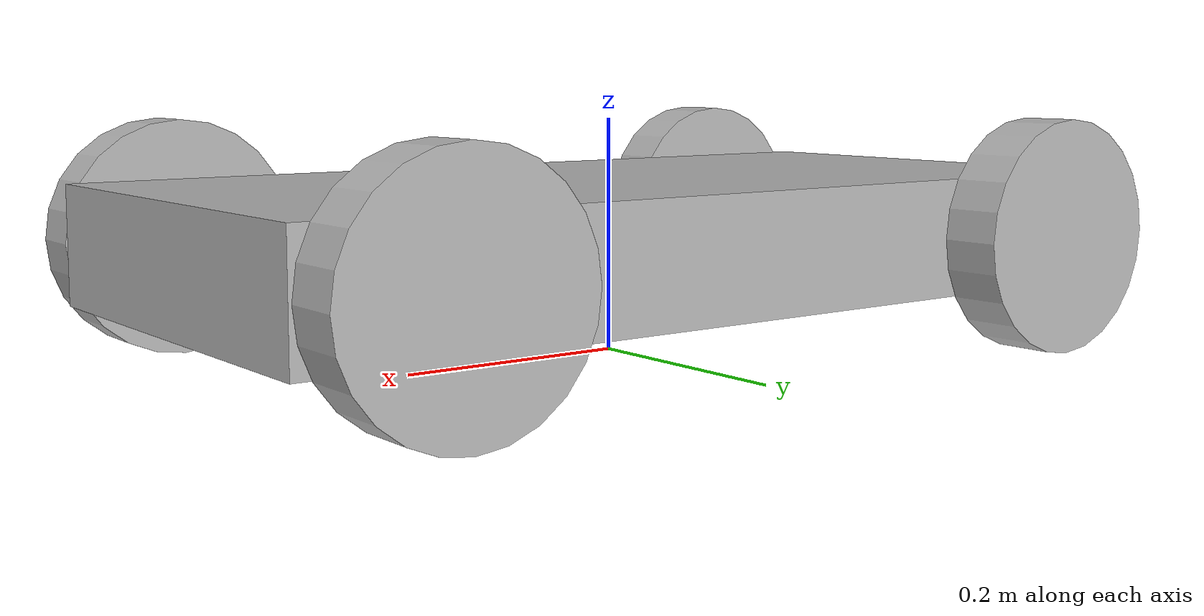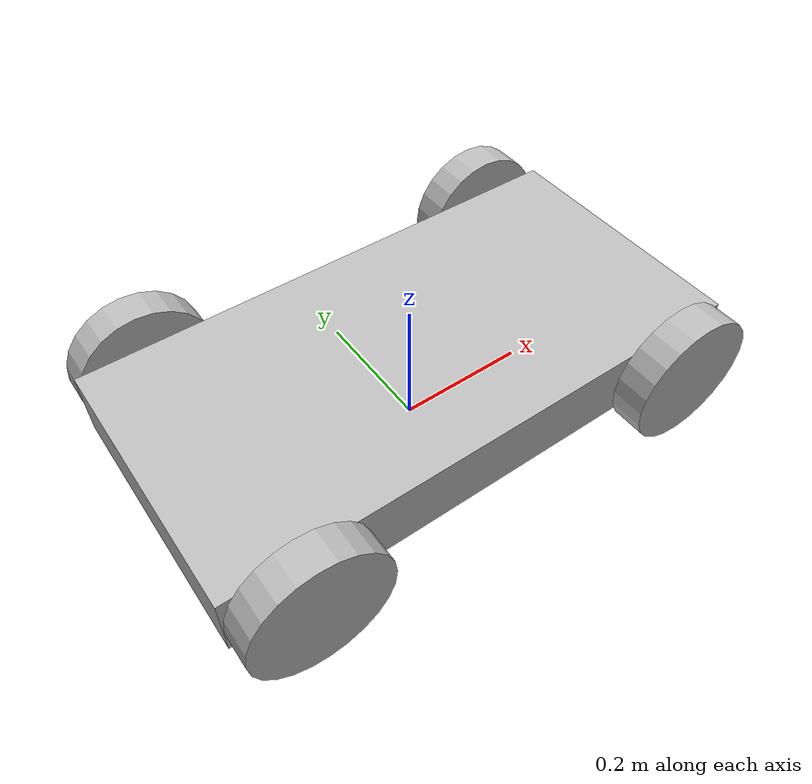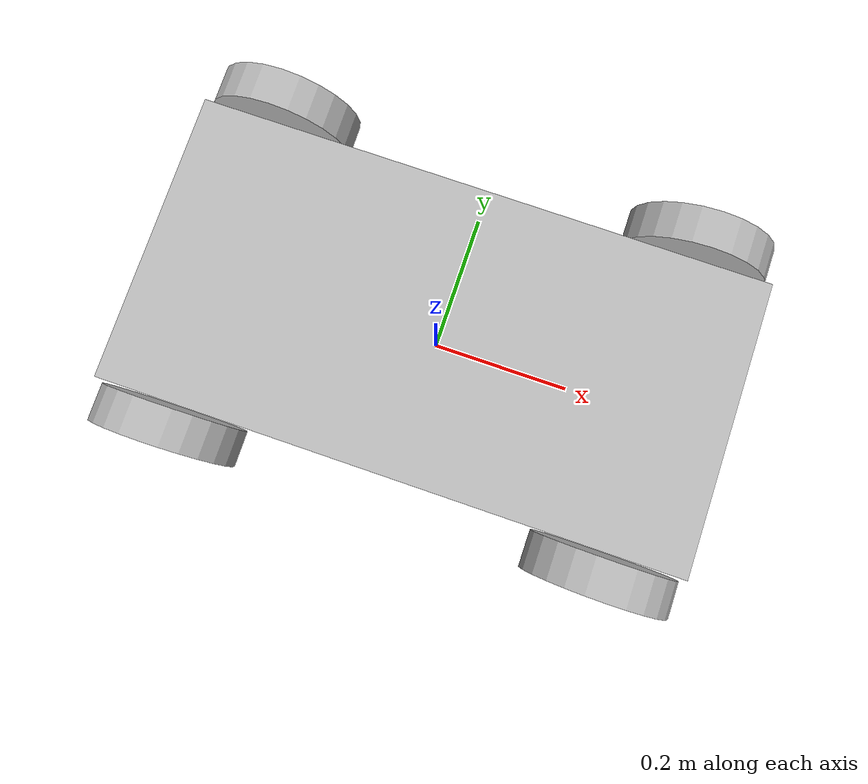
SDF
<?xml version='1.0'?>
<sdf version='1.4'>
  <model name="body_lifter">
    <static>false</static>

    <link name='chassis'>
      <pose>0 0 .1 0 0 0</pose>

      <collision name='collision'>
        <geometry>
          <box>
            <size>.8 .4 .1</size>
          </box>
        </geometry>
      </collision>

      <visual name='visual'>
        <geometry>
          <box>
            <size>.8 .4 .1</size>
          </box>
        </geometry>
      </visual>

   </link>

    <link name="left_wheel_A">
      <pose>0.3 0.23 0.1 0 1.5707 1.5707</pose>
      <collision name="collision">
        <geometry>
          <cylinder>
            <radius>.1</radius>
            <length>.05</length>
          </cylinder>
        </geometry>
      </collision>

      <visual name="visual">
        <geometry>
          <cylinder>
            <radius>.1</radius>
            <length>.05</length>
          </cylinder>
        </geometry>
      </visual>
    </link>

    <link name="left_wheel_B">
      <pose>-0.3 0.23 0.1 0 1.5707 1.5707</pose>
      <collision name="collision">
        <geometry>
          <cylinder>
            <radius>.1</radius>
            <length>.05</length>
          </cylinder>
        </geometry>
      </collision>

      <visual name="visual">
        <geometry>
          <cylinder>
            <radius>.1</radius>
            <length>.05</length>
          </cylinder>
        </geometry>
      </visual>
    </link>

    <link name="right_wheel_A">
      <pose>0.3 -0.23 0.1 0 1.5707 1.5707</pose>
      <collision name="collision">
        <geometry>
          <cylinder>
            <radius>.1</radius>
            <length>.05</length>
          </cylinder>
        </geometry>
      </collision>
      <visual name="visual">
        <geometry>
          <cylinder>
            <radius>.1</radius>
            <length>.05</length>
          </cylinder>
        </geometry>
      </visual>
    </link>

    <link name="right_wheel_B">
      <pose>-0.3 -0.23 0.1 0 1.5707 1.5707</pose>
      <collision name="collision">
        <geometry>
          <cylinder>
            <radius>.1</radius>
            <length>.05</length>
          </cylinder>
        </geometry>
      </collision>
      <visual name="visual">
        <geometry>
          <cylinder>
            <radius>.1</radius>
            <length>.05</length>
          </cylinder>
        </geometry>
      </visual>
    </link>

    <joint type="revolute" name="left_wheel_hinge_A">
      <pose>0 0 -0.03 0 0 0</pose>
      <child>left_wheel_A</child>
      <parent>chassis</parent>
      <axis>
        <xyz>0 1 0</xyz>
      </axis>
    </joint>

    <joint type="revolute" name="left_wheel_hinge_B">
      <pose>0 0 -0.03 0 0 0</pose>
      <child>left_wheel_B</child>
      <parent>chassis</parent>
      <axis>
        <xyz>0 1 0</xyz>
      </axis>
    </joint>

    <joint type="revolute" name="right_wheel_hinge_A">
      <pose>0 0 0.03 0 0 0</pose>
      <child>right_wheel_A</child>
      <parent>chassis</parent>
      <axis>
        <xyz>0 1 0</xyz>
      </axis>
    </joint>

    <joint type="revolute" name="right_wheel_hinge_B">
      <pose>0 0 0.03 0 0 0</pose>
      <child>right_wheel_B</child>
      <parent>chassis</parent>
      <axis>
        <xyz>0 1 0</xyz>
      </axis>
    </joint>

  </model>
</sdf>
